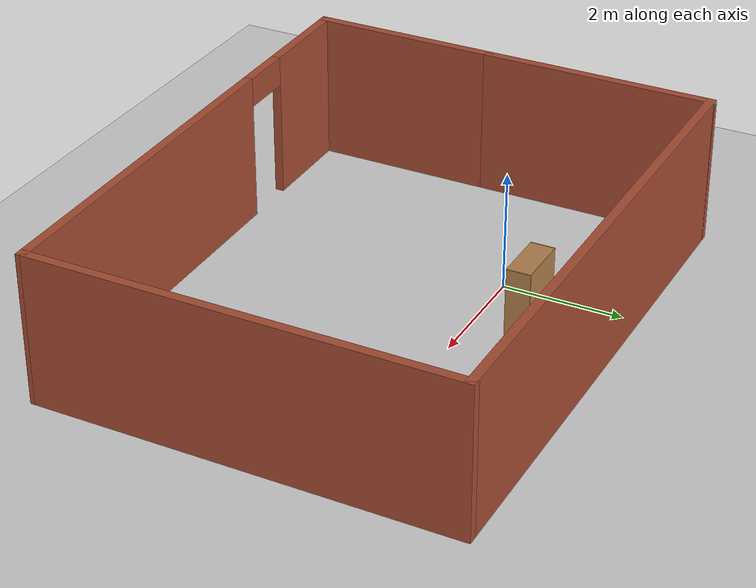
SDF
<sdf version="1.7">
 <world name="default">
  <light name="sun" type="directional">
   <pose>0 0 10 0 -0 0</pose>
   <diffuse>0.8 0.8 0.8 1</diffuse>
   <specular>0.2 0.2 0.2 1</specular>
   <attenuation>
    <range>1000</range>
    <constant>0.9</constant>
    <linear>0.01</linear>
    <quadratic>0.001</quadratic>
   </attenuation>
   <direction>-0.5 0.1 -0.9</direction>
   <spot><inner_angle>0</inner_angle><outer_angle>0</outer_angle><falloff>0</falloff></spot>
  </light>
  <model name="ground_plane">
   <static>1</static>
   <link name="link">
    <collision name="collision">
     <geometry><plane><normal>0 0 1</normal><size>100 100</size></plane></geometry>
     <surface><friction><ode><mu>100</mu><mu2>50</mu2></ode></friction></surface>
    </collision>
    <visual name="visual">
     <cast_shadows>0</cast_shadows>
     <geometry><plane><normal>0 0 1</normal><size>100 100</size></plane></geometry>
     <material>
      <script><uri>file://media/materials/scripts/gazebo.material</uri><name>Gazebo/Grey</name></script>
     </material>
    </visual>
   </link>
  </model>
  <gravity>0 0 -9.8</gravity>
  <magnetic_field>6e-06 2.3e-05 -4.2e-05</magnetic_field>
  <atmosphere type="adiabatic"/>
  <physics type="ode">
   <max_step_size>0.001</max_step_size>
   <real_time_factor>1</real_time_factor>
   <real_time_update_rate>1000</real_time_update_rate>
  </physics>
  <scene><ambient>0.4 0.4 0.4 1</ambient><background>0.7 0.7 0.7 1</background><shadows>1</shadows></scene>
  <audio><device>default</device></audio>
  <spherical_coordinates>
   <surface_model>EARTH_WGS84</surface_model>
   <latitude_deg>0</latitude_deg>
   <longitude_deg>0</longitude_deg>
   <elevation>0</elevation>
   <heading_deg>0</heading_deg>
  </spherical_coordinates>
  <model name="bookshelf">
   <static>1</static>
   <link name="link">
    <inertial><mass>1</mass></inertial>
    <collision name="back">
     <pose>0 0.005 0.6 0 -0 0</pose>
     <geometry><box><size>0.9 0.01 1.2</size></box></geometry>
    </collision>
    <visual name="visual1">
     <pose>0 0.005 0.6 0 -0 0</pose>
     <geometry><box><size>0.9 0.01 1.2</size></box></geometry>
     <material>
      <script><uri>file://media/materials/scripts/gazebo.material</uri><name>Gazebo/Wood</name></script>
     </material>
    </visual>
    <collision name="left_side">
     <pose>0.45 -0.195 0.6 0 -0 0</pose>
     <geometry><box><size>0.02 0.4 1.2</size></box></geometry>
    </collision>
    <visual name="visual2">
     <pose>0.45 -0.195 0.6 0 -0 0</pose>
     <geometry><box><size>0.02 0.4 1.2</size></box></geometry>
     <material>
      <script><uri>file://media/materials/scripts/gazebo.material</uri><name>Gazebo/Wood</name></script>
     </material>
    </visual>
    <collision name="right_side">
     <pose>-0.45 -0.195 0.6 0 -0 0</pose>
     <geometry><box><size>0.02 0.4 1.2</size></box></geometry>
    </collision>
    <visual name="visual3">
     <pose>-0.45 -0.195 0.6 0 -0 0</pose>
     <geometry><box><size>0.02 0.4 1.2</size></box></geometry>
     <material>
      <script><uri>file://media/materials/scripts/gazebo.material</uri><name>Gazebo/Wood</name></script>
     </material>
    </visual>
    <collision name="bottom">
     <pose>0 -0.195 0.03 0 -0 0</pose>
     <geometry><box><size>0.88 0.4 0.06</size></box></geometry>
    </collision>
    <visual name="visual4">
     <pose>0 -0.195 0.03 0 -0 0</pose>
     <geometry><box><size>0.88 0.4 0.06</size></box></geometry>
     <material>
      <script><uri>file://media/materials/scripts/gazebo.material</uri><name>Gazebo/Wood</name></script>
     </material>
    </visual>
    <collision name="top">
     <pose>0 -0.195 1.19 0 -0 0</pose>
     <geometry><box><size>0.88 0.4 0.02</size></box></geometry>
    </collision>
    <visual name="visual5">
     <pose>0 -0.195 1.19 0 -0 0</pose>
     <geometry><box><size>0.88 0.4 0.02</size></box></geometry>
     <material>
      <script><uri>file://media/materials/scripts/gazebo.material</uri><name>Gazebo/Wood</name></script>
     </material>
    </visual>
    <collision name="low_shelf">
     <pose>0 -0.195 0.43 0 -0 0</pose>
     <geometry><box><size>0.88 0.4 0.02</size></box></geometry>
    </collision>
    <visual name="visual6">
     <pose>0 -0.195 0.43 0 -0 0</pose>
     <geometry><box><size>0.88 0.4 0.02</size></box></geometry>
     <material>
      <script><uri>file://media/materials/scripts/gazebo.material</uri><name>Gazebo/Wood</name></script>
     </material>
    </visual>
    <collision name="high_shelf">
     <pose>0 -0.195 0.8 0 -0 0</pose>
     <geometry><box><size>0.88 0.4 0.02</size></box></geometry>
    </collision>
    <visual name="visual7">
     <pose>0 -0.195 0.8 0 -0 0</pose>
     <geometry><box><size>0.88 0.4 0.02</size></box></geometry>
     <material>
      <script><uri>file://media/materials/scripts/gazebo.material</uri><name>Gazebo/Wood</name></script>
     </material>
    </visual>
   </link>
   <pose>0.946508 1.0298 0.038062 0 -0 0</pose>
  </model>
  <model name="testmodel">
   <pose>1.565 -1.26542 0 0 -0 0</pose>
   <link name="Wall_0">
    <collision name="Wall_0_Collision">
     <geometry><box><size>3.25 0.15 2.5</size></box></geometry>
     <pose>0 0 1.25 0 -0 0</pose>
    </collision>
    <visual name="Wall_0_Visual">
     <pose>0 0 1.25 0 -0 0</pose>
     <geometry><box><size>3.25 0.15 2.5</size></box></geometry>
     <material>
      <script><uri>file://media/materials/scripts/gazebo.material</uri><name>Gazebo/Bricks</name></script>
      <ambient>1 1 1 1</ambient>
     </material>
     <meta><layer>0</layer></meta>
    </visual>
    <pose>-4.425 -1.92458 0 0 -0 -1.5708</pose>
   </link>
   <link name="Wall_4">
    <collision name="Wall_4_Collision">
     <geometry><box><size>4 0.15 2.5</size></box></geometry>
     <pose>0 0 1.25 0 -0 0</pose>
    </collision>
    <visual name="Wall_4_Visual">
     <pose>0 0 1.25 0 -0 0</pose>
     <geometry><box><size>4 0.15 2.5</size></box></geometry>
     <material>
      <script><uri>file://media/materials/scripts/gazebo.material</uri><name>Gazebo/Bricks</name></script>
      <ambient>1 1 1 1</ambient>
     </material>
     <meta><layer>0</layer></meta>
    </visual>
    <pose>-4.425 1.55042 0 0 -0 1.5708</pose>
   </link>
   <link name="Wall_5">
    <collision name="Wall_5_Collision">
     <geometry><box><size>0.15 0.15 2.5</size></box></geometry>
     <pose>0 0 1.25 0 -0 0</pose>
    </collision>
    <visual name="Wall_5_Visual">
     <pose>0 0 1.25 0 -0 0</pose>
     <geometry><box><size>0.15 0.15 2.5</size></box></geometry>
     <material>
      <script><uri>file://media/materials/scripts/gazebo.material</uri><name>Gazebo/Grey</name></script>
      <ambient>1 1 1 1</ambient>
     </material>
     <meta><layer>0</layer></meta>
    </visual>
    <pose>-4.425 3.47542 0 0 -0 0</pose>
   </link>
   <link name="Wall_6">
    <collision name="Wall_6_Collision">
     <geometry><box><size>9 0.15 2.5</size></box></geometry>
     <pose>0 0 1.25 0 -0 0</pose>
    </collision>
    <visual name="Wall_6_Visual">
     <pose>0 0 1.25 0 -0 0</pose>
     <geometry><box><size>9 0.15 2.5</size></box></geometry>
     <material>
      <script><uri>file://media/materials/scripts/gazebo.material</uri><name>Gazebo/Bricks</name></script>
      <ambient>1 1 1 1</ambient>
     </material>
     <meta><layer>0</layer></meta>
    </visual>
    <pose>0 3.47542 0 0 -0 0</pose>
   </link>
   <link name="Wall_7">
    <collision name="Wall_7_Collision">
     <geometry><box><size>7 0.15 2.5</size></box></geometry>
     <pose>0 0 1.25 0 -0 0</pose>
    </collision>
    <visual name="Wall_7_Visual">
     <pose>0 0 1.25 0 -0 0</pose>
     <geometry><box><size>7 0.15 2.5</size></box></geometry>
     <material>
      <script><uri>file://media/materials/scripts/gazebo.material</uri><name>Gazebo/Bricks</name></script>
      <ambient>1 1 1 1</ambient>
     </material>
     <meta><layer>0</layer></meta>
    </visual>
    <pose>4.425 0.050421 0 0 -0 -1.5708</pose>
   </link>
   <link name="Wall_8">
    <pose>0 -3.42458 0 0 -0 -3.13029</pose>
    <visual name="Wall_8_Visual_0">
     <pose>-1.35383 0 1.25 0 -0 0</pose>
     <geometry><box><size>6.29291 0.15 2.5</size></box></geometry>
     <material>
      <script><uri>file://media/materials/scripts/gazebo.material</uri><name>Gazebo/Bricks</name></script>
      <ambient>1 1 1 1</ambient>
     </material>
     <meta><layer>0</layer></meta>
    </visual>
    <collision name="Wall_8_Collision_0">
     <geometry><box><size>6.29291 0.15 2.5</size></box></geometry>
     <pose>-1.35383 0 1.25 0 -0 0</pose>
    </collision>
    <visual name="Wall_8_Visual_1">
     <pose>3.59646 0 1.25 0 -0 0</pose>
     <geometry><box><size>1.80766 0.15 2.5</size></box></geometry>
     <material>
      <script><uri>file://media/materials/scripts/gazebo.material</uri><name>Gazebo/Bricks</name></script>
      <ambient>1 1 1 1</ambient>
     </material>
     <meta><layer>0</layer></meta>
    </visual>
    <collision name="Wall_8_Collision_1">
     <geometry><box><size>1.80766 0.15 2.5</size></box></geometry>
     <pose>3.59646 0 1.25 0 -0 0</pose>
    </collision>
    <visual name="Wall_8_Visual_2">
     <pose>2.24263 0 2.25 0 -0 0</pose>
     <geometry><box><size>0.9 0.15 0.5</size></box></geometry>
     <material>
      <script><uri>file://media/materials/scripts/gazebo.material</uri><name>Gazebo/Bricks</name></script>
      <ambient>1 1 1 1</ambient>
     </material>
     <meta><layer>0</layer></meta>
    </visual>
    <collision name="Wall_8_Collision_2">
     <geometry><box><size>0.9 0.15 0.5</size></box></geometry>
     <pose>2.24263 0 2.25 0 -0 0</pose>
    </collision>
   </link>
   <static>1</static>
  </model>
 </world>
</sdf>
